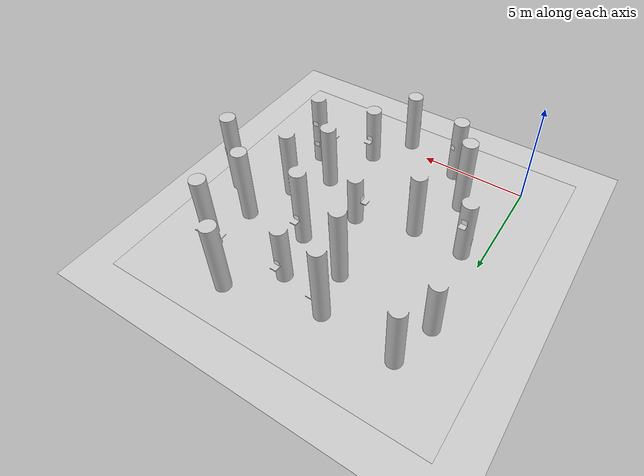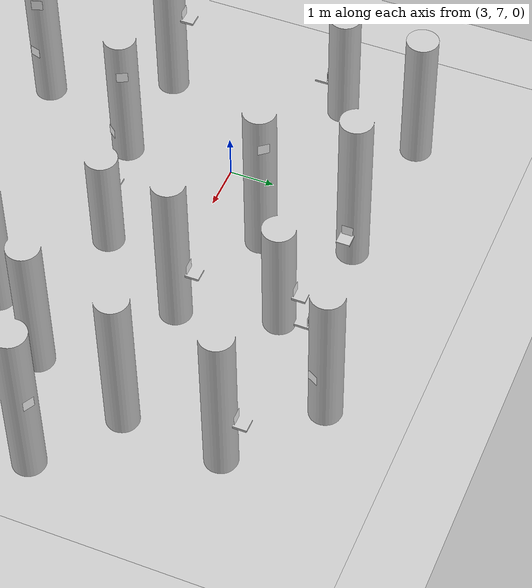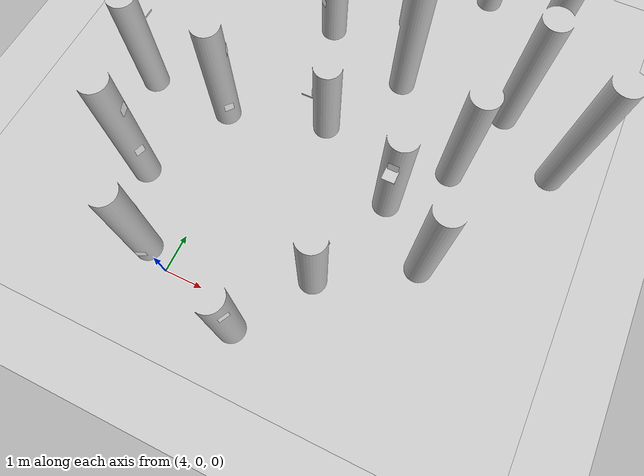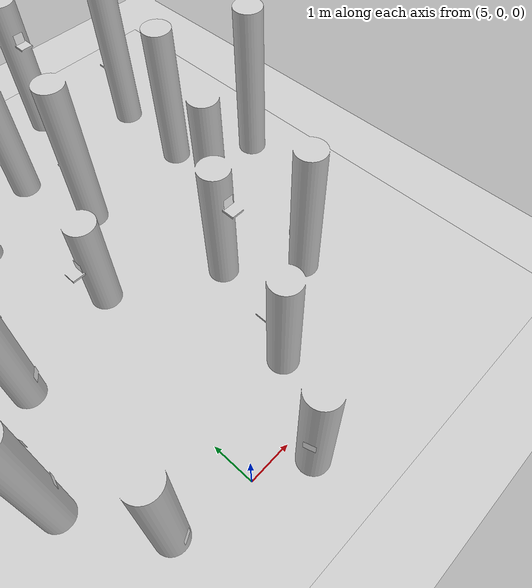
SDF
<?xml version="1.0" ?>
<sdf version="1.9">
  <world name="icuas26_2_world">
    <physics type="ode">
      <max_step_size>0.001</max_step_size>
      <real_time_factor>1.0</real_time_factor>
      <real_time_update_rate>1000</real_time_update_rate>
    </physics>
    <plugin name='gz::sim::systems::Physics' filename='libgz-sim-physics-system.so'/>
    <plugin name='gz::sim::systems::UserCommands' filename='libgz-sim-user-commands-system.so'/>
    <plugin name='gz::sim::systems::SceneBroadcaster' filename='libgz-sim-scene-broadcaster-system.so'/>
    <plugin name='gz::sim::systems::Contact' filename='libgz-sim-contact-system.so'/>
    <plugin name='gz::sim::systems::Imu' filename='libgz-sim-imu-system.so'/>
    <plugin name='gz::sim::systems::AirPressure' filename='libgz-sim-air-pressure-system.so'/>
    <plugin name='gz::sim::systems::Sensors' filename='libgz-sim-sensors-system.so'>
      <render_engine>ogre2</render_engine>
    </plugin>
    <gravity>0 0 -9.80665</gravity>
    <magnetic_field>6e-06 2.3e-05 -4.2e-05</magnetic_field>
    <atmosphere type='adiabatic'/>
    <scene>
      <grid>false</grid>
      <ambient>0.4 0.4 0.4 1</ambient>
      <background>0.7 0.7 0.7 1</background>
      <shadows>true</shadows>
    </scene>
    <model name="ground_plane">
      <pose>5.5 5.5 0 0 0 0</pose>
      <static>true</static>
      <link name="link">
        <collision name="collision">
          <geometry>
            <plane>
              <normal>0 0 1</normal>
              <size>15 15</size>
            </plane>
          </geometry>
        </collision>
        <visual name="visual">
          <geometry>
            <plane>
              <normal>0 0 1</normal>
              <size>15 15</size>
            </plane>
          </geometry>
          <material>
            <ambient>0.8 0.8 0.8 1</ambient>
            <diffuse>0.8 0.8 0.8 1</diffuse>
            <specular>0.8 0.8 0.8 1</specular>
          </material>
        </visual>
      </link>
    </model>
    <include>
      <pose>0 0 0 0 0 0</pose>
      <uri>model://icuas26_2</uri>
    </include>
    <include>
      <pose>7.335391044616699 1.6830718097686768 1.444806694984436 1.5707963267948966 0.0 3.141592653589793</pose>
      <uri>model://aruco_markers/aruco_marker_0012</uri>
    </include>
    <include>
      <pose>0.2904238700866699 8.238997978210449 1.0328772068023684 1.5707963267948966 0.0 0.0</pose>
      <uri>model://aruco_markers/aruco_marker_0015</uri>
    </include>
    <include>
      <pose>6.536825656890869 9.960838752746582 1.1969184875488283 1.5707963267948966 0.0 3.141592653589793</pose>
      <uri>model://aruco_markers/aruco_marker_0019</uri>
    </include>
    <include>
      <pose>8.142804145812988 3.5918024005889895 2.558365821838379 1.5707963267948966 0.0 0.0</pose>
      <uri>model://aruco_markers/aruco_marker_0011</uri>
    </include>
    <include>
      <pose>5.4475164833068845 5.356787204742432 1.461173176765442 1.5707963267948966 0.0 -1.5707963267948966</pose>
      <uri>model://aruco_markers/aruco_marker_0013</uri>
    </include>
    <include>
      <pose>4.5347222862243655 10.31544303894043 1.0530517101287844 1.5707963267948966 0.0 1.5707963267948966</pose>
      <uri>model://aruco_markers/aruco_marker_0016</uri>
    </include>
    <include>
      <pose>7.106964111328125 7.873931365966797 1.5922586917877197 1.5707963267948966 0.0 3.141592653589793</pose>
      <uri>model://aruco_markers/aruco_marker_0020</uri>
    </include>
    <include>
      <pose>0.9037801623344421 5.0258488235473635 2.2890615463256836 1.5707963267948966 0.0 3.141592653589793</pose>
      <uri>model://aruco_markers/aruco_marker_0018</uri>
    </include>
    <include>
      <pose>8.329676628112793 10.97985319519043 2.762848138809204 1.5707963267948966 0.0 0.0</pose>
      <uri>model://aruco_markers/aruco_marker_0014</uri>
    </include>
    <include>
      <pose>10.183023452758789 10.233912902832031 1.552241563796997 1.5707963267948966 0.0 3.141592653589793</pose>
      <uri>model://aruco_markers/aruco_marker_0017</uri>
    </include>
    <include>
      <pose>4.903156034701175 8.603407321896166 3.1601580871640107 1.5707963267948966 0.0 2.2580171649337912</pose>
      <uri>model://aruco_markers/aruco_marker_0026</uri>
    </include>
    <include>
      <pose>5.7984055160195735 -0.6498988309002823 1.4371176772676617 1.5707963267948966 0.0 -1.276265494008094</pose>
      <uri>model://aruco_markers/aruco_marker_0024</uri>
    </include>
    <include>
      <pose>3.519504506591861 4.7620994960804275 2.533406555983791 1.5707963267948966 0.0 2.0616706091382873</pose>
      <uri>model://aruco_markers/aruco_marker_0003</uri>
    </include>
    <include>
      <pose>3.483295963101857 4.38880433313493 0.7423948517834138 1.5707963267948966 0.0 0.883574435108613</pose>
      <uri>model://aruco_markers/aruco_marker_0029</uri>
    </include>
    <include>
      <pose>8.63827538882201 11.17218098804261 1.3792089617724586 1.5707963267948966 0.0 1.079931421084578</pose>
      <uri>model://aruco_markers/aruco_marker_0001</uri>
    </include>
    <include>
      <pose>3.461538130906631 0.0369139085188597 0.5008387001555179 1.5707963267948966 0.0 0.490873808110309</pose>
      <uri>model://aruco_markers/aruco_marker_0004</uri>
    </include>
    <include>
      <pose>4.412888624824282 8.115985339012989 1.2638115845816544 1.5707963267948966 0.0 -0.6872272838940026</pose>
      <uri>model://aruco_markers/aruco_marker_0006</uri>
    </include>
    <include>
      <pose>9.496088170772701 3.0373198842514717 1.090994114480942 1.5707963267948966 0.0 -3.0434184063912664</pose>
      <uri>model://aruco_markers/aruco_marker_0005</uri>
    </include>
    <include>
      <pose>2.485606265589438 2.071231606443782 1.4315730561333857 1.5707963267948966 0.0 1.2762721092604883</pose>
      <uri>model://aruco_markers/aruco_marker_0030</uri>
    </include>
    <include>
      <pose>2.488550342809175 2.2549896001339804 2.8742114964043135 1.5707963267948966 0.0 1.8653205443293048</pose>
      <uri>model://aruco_markers/aruco_marker_0027</uri>
    </include>
    <include>
      <pose>3.455377102448139 0.6745045489316379 1.8811222466907842 1.5707963267948968 0.0 2.6507185026656783</pose>
      <uri>model://aruco_markers/aruco_marker_0002</uri>
    </include>
    <include>
      <pose>9.524958629827957 3.0401633611592467 2.298445865036267 1.5707963267948966 0.0 -3.0434184063912664</pose>
      <uri>model://aruco_markers/aruco_marker_0028</uri>
    </include>
    <include>
      <pose>0.5559252786889245 4.637867143124089 0.9543857689246853 1.5707963267948968 0.0 -1.472621911932089</pose>
      <uri>model://aruco_markers/aruco_marker_0025</uri>
    </include>
    <include>
      <pose>11.838892340292167 6.734746335697648 2.2326102962760426 1.5707963267948966 0.0 2.6507155515959253</pose>
      <uri>model://aruco_markers/aruco_marker_0007</uri>
    </include>
    <include>
      <pose>6.455294864089083 -0.6909291986787334 2.427317400284451 1.5707963267948966 0.0 1.07992371846965</pose>
      <uri>model://aruco_markers/aruco_marker_0022</uri>
    </include>
    <light type="directional" name="sun">
      <cast_shadows>true</cast_shadows>
      <pose>0 0 20 0 0 0</pose>
      <diffuse>0.8 0.8 0.8 1</diffuse>
      <specular>0.2 0.2 0.2 1</specular>
      <attenuation>
        <range>1000</range>
        <constant>0.9</constant>
        <linear>0.01</linear>
        <quadratic>0.001</quadratic>
      </attenuation>
      <direction>-0.5 0.1 -0.9</direction>
    </light>
  </world>
</sdf>

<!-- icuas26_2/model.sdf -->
<sdf version="1.9">
  <model name="icuas26_2">
    <static>true</static>
    <link name="link">
      <collision name="collision">
        <geometry>
          <mesh>
            <uri>model://icuas26_2/meshes/icuas26_2.stl</uri>
          </mesh>
        </geometry>
      </collision>
      <visual name="visual">
        <geometry>
          <mesh>
            <uri>model://icuas26_2/meshes/icuas26_2.stl</uri>
          </mesh>
        </geometry>
        <material>
            <ambient>0.8 0.8 0.8 1</ambient>
            <diffuse>0.8 0.8 0.8 1</diffuse>
            <specular>0.8 0.8 0.8 1</specular>
        </material>
      </visual>
    </link>
  </model>
</sdf>

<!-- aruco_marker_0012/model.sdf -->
<sdf version="1.9">
  <model name="aruco_marker_0012">
    <static>true</static>
    <link name="link">
      <visual name="aruco_marker_0012_vis">
        <pose>0 0 0 0 0 0</pose>
        <geometry>
          <plane>
            <normal>0 0 1</normal>
            <size>0.25 0.25</size>
          </plane>
        </geometry>
        <material>
          <pbr>
            <metal>
              <albedo_map>marker_0012.png</albedo_map>
              <metalness>0.0</metalness>
            </metal>
          </pbr>
          <ambient>1 1 1 1</ambient>
          <diffuse>1 1 1 1</diffuse>
          <specular>0 0 0 1</specular>
        </material>
      </visual>
    </link>
  </model>
</sdf>

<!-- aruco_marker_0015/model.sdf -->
<sdf version="1.9">
  <model name="aruco_marker_0015">
    <static>true</static>
    <link name="link">
      <visual name="aruco_marker_0015_vis">
        <pose>0 0 0 0 0 0</pose>
        <geometry>
          <plane>
            <normal>0 0 1</normal>
            <size>0.25 0.25</size>
          </plane>
        </geometry>
        <material>
          <pbr>
            <metal>
              <albedo_map>marker_0015.png</albedo_map>
              <metalness>0.0</metalness>
            </metal>
          </pbr>
          <ambient>1 1 1 1</ambient>
          <diffuse>1 1 1 1</diffuse>
          <specular>0 0 0 1</specular>
        </material>
      </visual>
    </link>
  </model>
</sdf>

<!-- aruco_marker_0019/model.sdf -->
<sdf version="1.9">
  <model name="aruco_marker_0019">
    <static>true</static>
    <link name="link">
      <visual name="aruco_marker_0019_vis">
        <pose>0 0 0 0 0 0</pose>
        <geometry>
          <plane>
            <normal>0 0 1</normal>
            <size>0.25 0.25</size>
          </plane>
        </geometry>
        <material>
          <pbr>
            <metal>
              <albedo_map>marker_0019.png</albedo_map>
              <metalness>0.0</metalness>
            </metal>
          </pbr>
          <ambient>1 1 1 1</ambient>
          <diffuse>1 1 1 1</diffuse>
          <specular>0 0 0 1</specular>
        </material>
      </visual>
    </link>
  </model>
</sdf>

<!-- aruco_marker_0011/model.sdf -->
<sdf version="1.9">
  <model name="aruco_marker_0011">
    <static>true</static>
    <link name="link">
      <visual name="aruco_marker_0011_vis">
        <pose>0 0 0 0 0 0</pose>
        <geometry>
          <plane>
            <normal>0 0 1</normal>
            <size>0.25 0.25</size>
          </plane>
        </geometry>
        <material>
          <pbr>
            <metal>
              <albedo_map>marker_0011.png</albedo_map>
              <metalness>0.0</metalness>
            </metal>
          </pbr>
          <ambient>1 1 1 1</ambient>
          <diffuse>1 1 1 1</diffuse>
          <specular>0 0 0 1</specular>
        </material>
      </visual>
    </link>
  </model>
</sdf>

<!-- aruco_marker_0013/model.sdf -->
<sdf version="1.9">
  <model name="aruco_marker_0013">
    <static>true</static>
    <link name="link">
      <visual name="aruco_marker_0013_vis">
        <pose>0 0 0 0 0 0</pose>
        <geometry>
          <plane>
            <normal>0 0 1</normal>
            <size>0.25 0.25</size>
          </plane>
        </geometry>
        <material>
          <pbr>
            <metal>
              <albedo_map>marker_0013.png</albedo_map>
              <metalness>0.0</metalness>
            </metal>
          </pbr>
          <ambient>1 1 1 1</ambient>
          <diffuse>1 1 1 1</diffuse>
          <specular>0 0 0 1</specular>
        </material>
      </visual>
    </link>
  </model>
</sdf>

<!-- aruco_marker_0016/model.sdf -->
<sdf version="1.9">
  <model name="aruco_marker_0016">
    <static>true</static>
    <link name="link">
      <visual name="aruco_marker_0016_vis">
        <pose>0 0 0 0 0 0</pose>
        <geometry>
          <plane>
            <normal>0 0 1</normal>
            <size>0.25 0.25</size>
          </plane>
        </geometry>
        <material>
          <pbr>
            <metal>
              <albedo_map>marker_0016.png</albedo_map>
              <metalness>0.0</metalness>
            </metal>
          </pbr>
          <ambient>1 1 1 1</ambient>
          <diffuse>1 1 1 1</diffuse>
          <specular>0 0 0 1</specular>
        </material>
      </visual>
    </link>
  </model>
</sdf>

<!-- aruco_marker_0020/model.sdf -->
<sdf version="1.9">
  <model name="aruco_marker_0020">
    <static>true</static>
    <link name="link">
      <visual name="aruco_marker_0020_vis">
        <pose>0 0 0 0 0 0</pose>
        <geometry>
          <plane>
            <normal>0 0 1</normal>
            <size>0.25 0.25</size>
          </plane>
        </geometry>
        <material>
          <pbr>
            <metal>
              <albedo_map>marker_0020.png</albedo_map>
              <metalness>0.0</metalness>
            </metal>
          </pbr>
          <ambient>1 1 1 1</ambient>
          <diffuse>1 1 1 1</diffuse>
          <specular>0 0 0 1</specular>
        </material>
      </visual>
    </link>
  </model>
</sdf>

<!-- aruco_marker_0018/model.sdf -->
<sdf version="1.9">
  <model name="aruco_marker_0018">
    <static>true</static>
    <link name="link">
      <visual name="aruco_marker_0018_vis">
        <pose>0 0 0 0 0 0</pose>
        <geometry>
          <plane>
            <normal>0 0 1</normal>
            <size>0.25 0.25</size>
          </plane>
        </geometry>
        <material>
          <pbr>
            <metal>
              <albedo_map>marker_0018.png</albedo_map>
              <metalness>0.0</metalness>
            </metal>
          </pbr>
          <ambient>1 1 1 1</ambient>
          <diffuse>1 1 1 1</diffuse>
          <specular>0 0 0 1</specular>
        </material>
      </visual>
    </link>
  </model>
</sdf>

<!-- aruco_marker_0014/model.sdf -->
<sdf version="1.9">
  <model name="aruco_marker_0014">
    <static>true</static>
    <link name="link">
      <visual name="aruco_marker_0014_vis">
        <pose>0 0 0 0 0 0</pose>
        <geometry>
          <plane>
            <normal>0 0 1</normal>
            <size>0.25 0.25</size>
          </plane>
        </geometry>
        <material>
          <pbr>
            <metal>
              <albedo_map>marker_0014.png</albedo_map>
              <metalness>0.0</metalness>
            </metal>
          </pbr>
          <ambient>1 1 1 1</ambient>
          <diffuse>1 1 1 1</diffuse>
          <specular>0 0 0 1</specular>
        </material>
      </visual>
    </link>
  </model>
</sdf>

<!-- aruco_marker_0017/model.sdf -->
<sdf version="1.9">
  <model name="aruco_marker_0017">
    <static>true</static>
    <link name="link">
      <visual name="aruco_marker_0017_vis">
        <pose>0 0 0 0 0 0</pose>
        <geometry>
          <plane>
            <normal>0 0 1</normal>
            <size>0.25 0.25</size>
          </plane>
        </geometry>
        <material>
          <pbr>
            <metal>
              <albedo_map>marker_0017.png</albedo_map>
              <metalness>0.0</metalness>
            </metal>
          </pbr>
          <ambient>1 1 1 1</ambient>
          <diffuse>1 1 1 1</diffuse>
          <specular>0 0 0 1</specular>
        </material>
      </visual>
    </link>
  </model>
</sdf>

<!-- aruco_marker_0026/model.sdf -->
<sdf version="1.9">
  <model name="aruco_marker_0026">
    <static>true</static>
    <link name="link">
      <visual name="aruco_marker_0026_vis">
        <pose>0 0 0 0 0 0</pose>
        <geometry>
          <plane>
            <normal>0 0 1</normal>
            <size>0.25 0.25</size>
          </plane>
        </geometry>
        <material>
          <pbr>
            <metal>
              <albedo_map>marker_0026.png</albedo_map>
              <metalness>0.0</metalness>
            </metal>
          </pbr>
          <ambient>1 1 1 1</ambient>
          <diffuse>1 1 1 1</diffuse>
          <specular>0 0 0 1</specular>
        </material>
      </visual>
    </link>
  </model>
</sdf>

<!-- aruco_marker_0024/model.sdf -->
<sdf version="1.9">
  <model name="aruco_marker_0024">
    <static>true</static>
    <link name="link">
      <visual name="aruco_marker_0024_vis">
        <pose>0 0 0 0 0 0</pose>
        <geometry>
          <plane>
            <normal>0 0 1</normal>
            <size>0.25 0.25</size>
          </plane>
        </geometry>
        <material>
          <pbr>
            <metal>
              <albedo_map>marker_0024.png</albedo_map>
              <metalness>0.0</metalness>
            </metal>
          </pbr>
          <ambient>1 1 1 1</ambient>
          <diffuse>1 1 1 1</diffuse>
          <specular>0 0 0 1</specular>
        </material>
      </visual>
    </link>
  </model>
</sdf>

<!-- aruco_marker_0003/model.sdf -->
<sdf version="1.9">
  <model name="aruco_marker_0003">
    <static>true</static>
    <link name="link">
      <visual name="aruco_marker_0003_vis">
        <pose>0 0 0 0 0 0</pose>
        <geometry>
          <plane>
            <normal>0 0 1</normal>
            <size>0.25 0.25</size>
          </plane>
        </geometry>
        <material>
          <pbr>
            <metal>
              <albedo_map>marker_0003.png</albedo_map>
              <metalness>0.0</metalness>
            </metal>
          </pbr>
          <ambient>1 1 1 1</ambient>
          <diffuse>1 1 1 1</diffuse>
          <specular>0 0 0 1</specular>
        </material>
      </visual>
    </link>
  </model>
</sdf>

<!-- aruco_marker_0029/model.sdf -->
<sdf version="1.9">
  <model name="aruco_marker_0029">
    <static>true</static>
    <link name="link">
      <visual name="aruco_marker_0029_vis">
        <pose>0 0 0 0 0 0</pose>
        <geometry>
          <plane>
            <normal>0 0 1</normal>
            <size>0.25 0.25</size>
          </plane>
        </geometry>
        <material>
          <pbr>
            <metal>
              <albedo_map>marker_0029.png</albedo_map>
              <metalness>0.0</metalness>
            </metal>
          </pbr>
          <ambient>1 1 1 1</ambient>
          <diffuse>1 1 1 1</diffuse>
          <specular>0 0 0 1</specular>
        </material>
      </visual>
    </link>
  </model>
</sdf>

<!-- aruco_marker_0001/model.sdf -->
<sdf version="1.9">
  <model name="aruco_marker_0001">
    <static>true</static>
    <link name="link">
      <visual name="aruco_marker_0001_vis">
        <pose>0 0 0 0 0 0</pose>
        <geometry>
          <plane>
            <normal>0 0 1</normal>
            <size>0.25 0.25</size>
          </plane>
        </geometry>
        <material>
          <pbr>
            <metal>
              <albedo_map>marker_0001.png</albedo_map>
              <metalness>0.0</metalness>
            </metal>
          </pbr>
          <ambient>1 1 1 1</ambient>
          <diffuse>1 1 1 1</diffuse>
          <specular>0 0 0 1</specular>
        </material>
      </visual>
    </link>
  </model>
</sdf>

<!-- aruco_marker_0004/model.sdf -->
<sdf version="1.9">
  <model name="aruco_marker_0004">
    <static>true</static>
    <link name="link">
      <visual name="aruco_marker_0004_vis">
        <pose>0 0 0 0 0 0</pose>
        <geometry>
          <plane>
            <normal>0 0 1</normal>
            <size>0.25 0.25</size>
          </plane>
        </geometry>
        <material>
          <pbr>
            <metal>
              <albedo_map>marker_0004.png</albedo_map>
              <metalness>0.0</metalness>
            </metal>
          </pbr>
          <ambient>1 1 1 1</ambient>
          <diffuse>1 1 1 1</diffuse>
          <specular>0 0 0 1</specular>
        </material>
      </visual>
    </link>
  </model>
</sdf>

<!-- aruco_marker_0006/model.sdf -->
<sdf version="1.9">
  <model name="aruco_marker_0006">
    <static>true</static>
    <link name="link">
      <visual name="aruco_marker_0006_vis">
        <pose>0 0 0 0 0 0</pose>
        <geometry>
          <plane>
            <normal>0 0 1</normal>
            <size>0.25 0.25</size>
          </plane>
        </geometry>
        <material>
          <pbr>
            <metal>
              <albedo_map>marker_0006.png</albedo_map>
              <metalness>0.0</metalness>
            </metal>
          </pbr>
          <ambient>1 1 1 1</ambient>
          <diffuse>1 1 1 1</diffuse>
          <specular>0 0 0 1</specular>
        </material>
      </visual>
    </link>
  </model>
</sdf>

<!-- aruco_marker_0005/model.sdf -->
<sdf version="1.9">
  <model name="aruco_marker_0005">
    <static>true</static>
    <link name="link">
      <visual name="aruco_marker_0005_vis">
        <pose>0 0 0 0 0 0</pose>
        <geometry>
          <plane>
            <normal>0 0 1</normal>
            <size>0.25 0.25</size>
          </plane>
        </geometry>
        <material>
          <pbr>
            <metal>
              <albedo_map>marker_0005.png</albedo_map>
              <metalness>0.0</metalness>
            </metal>
          </pbr>
          <ambient>1 1 1 1</ambient>
          <diffuse>1 1 1 1</diffuse>
          <specular>0 0 0 1</specular>
        </material>
      </visual>
    </link>
  </model>
</sdf>

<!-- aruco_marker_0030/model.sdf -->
<sdf version="1.9">
  <model name="aruco_marker_0030">
    <static>true</static>
    <link name="link">
      <visual name="aruco_marker_0030_vis">
        <pose>0 0 0 0 0 0</pose>
        <geometry>
          <plane>
            <normal>0 0 1</normal>
            <size>0.25 0.25</size>
          </plane>
        </geometry>
        <material>
          <pbr>
            <metal>
              <albedo_map>marker_0030.png</albedo_map>
              <metalness>0.0</metalness>
            </metal>
          </pbr>
          <ambient>1 1 1 1</ambient>
          <diffuse>1 1 1 1</diffuse>
          <specular>0 0 0 1</specular>
        </material>
      </visual>
    </link>
  </model>
</sdf>

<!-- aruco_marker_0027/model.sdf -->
<sdf version="1.9">
  <model name="aruco_marker_0027">
    <static>true</static>
    <link name="link">
      <visual name="aruco_marker_0027_vis">
        <pose>0 0 0 0 0 0</pose>
        <geometry>
          <plane>
            <normal>0 0 1</normal>
            <size>0.25 0.25</size>
          </plane>
        </geometry>
        <material>
          <pbr>
            <metal>
              <albedo_map>marker_0027.png</albedo_map>
              <metalness>0.0</metalness>
            </metal>
          </pbr>
          <ambient>1 1 1 1</ambient>
          <diffuse>1 1 1 1</diffuse>
          <specular>0 0 0 1</specular>
        </material>
      </visual>
    </link>
  </model>
</sdf>

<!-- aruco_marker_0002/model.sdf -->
<sdf version="1.9">
  <model name="aruco_marker_0002">
    <static>true</static>
    <link name="link">
      <visual name="aruco_marker_0002_vis">
        <pose>0 0 0 0 0 0</pose>
        <geometry>
          <plane>
            <normal>0 0 1</normal>
            <size>0.25 0.25</size>
          </plane>
        </geometry>
        <material>
          <pbr>
            <metal>
              <albedo_map>marker_0002.png</albedo_map>
              <metalness>0.0</metalness>
            </metal>
          </pbr>
          <ambient>1 1 1 1</ambient>
          <diffuse>1 1 1 1</diffuse>
          <specular>0 0 0 1</specular>
        </material>
      </visual>
    </link>
  </model>
</sdf>

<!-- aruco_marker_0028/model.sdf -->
<sdf version="1.9">
  <model name="aruco_marker_0028">
    <static>true</static>
    <link name="link">
      <visual name="aruco_marker_0028_vis">
        <pose>0 0 0 0 0 0</pose>
        <geometry>
          <plane>
            <normal>0 0 1</normal>
            <size>0.25 0.25</size>
          </plane>
        </geometry>
        <material>
          <pbr>
            <metal>
              <albedo_map>marker_0028.png</albedo_map>
              <metalness>0.0</metalness>
            </metal>
          </pbr>
          <ambient>1 1 1 1</ambient>
          <diffuse>1 1 1 1</diffuse>
          <specular>0 0 0 1</specular>
        </material>
      </visual>
    </link>
  </model>
</sdf>

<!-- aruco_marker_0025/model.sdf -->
<sdf version="1.9">
  <model name="aruco_marker_0025">
    <static>true</static>
    <link name="link">
      <visual name="aruco_marker_0025_vis">
        <pose>0 0 0 0 0 0</pose>
        <geometry>
          <plane>
            <normal>0 0 1</normal>
            <size>0.25 0.25</size>
          </plane>
        </geometry>
        <material>
          <pbr>
            <metal>
              <albedo_map>marker_0025.png</albedo_map>
              <metalness>0.0</metalness>
            </metal>
          </pbr>
          <ambient>1 1 1 1</ambient>
          <diffuse>1 1 1 1</diffuse>
          <specular>0 0 0 1</specular>
        </material>
      </visual>
    </link>
  </model>
</sdf>

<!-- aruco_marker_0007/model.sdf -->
<sdf version="1.9">
  <model name="aruco_marker_0007">
    <static>true</static>
    <link name="link">
      <visual name="aruco_marker_0007_vis">
        <pose>0 0 0 0 0 0</pose>
        <geometry>
          <plane>
            <normal>0 0 1</normal>
            <size>0.25 0.25</size>
          </plane>
        </geometry>
        <material>
          <pbr>
            <metal>
              <albedo_map>marker_0007.png</albedo_map>
              <metalness>0.0</metalness>
            </metal>
          </pbr>
          <ambient>1 1 1 1</ambient>
          <diffuse>1 1 1 1</diffuse>
          <specular>0 0 0 1</specular>
        </material>
      </visual>
    </link>
  </model>
</sdf>

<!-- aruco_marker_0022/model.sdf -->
<sdf version="1.9">
  <model name="aruco_marker_0022">
    <static>true</static>
    <link name="link">
      <visual name="aruco_marker_0022_vis">
        <pose>0 0 0 0 0 0</pose>
        <geometry>
          <plane>
            <normal>0 0 1</normal>
            <size>0.25 0.25</size>
          </plane>
        </geometry>
        <material>
          <pbr>
            <metal>
              <albedo_map>marker_0022.png</albedo_map>
              <metalness>0.0</metalness>
            </metal>
          </pbr>
          <ambient>1 1 1 1</ambient>
          <diffuse>1 1 1 1</diffuse>
          <specular>0 0 0 1</specular>
        </material>
      </visual>
    </link>
  </model>
</sdf>
